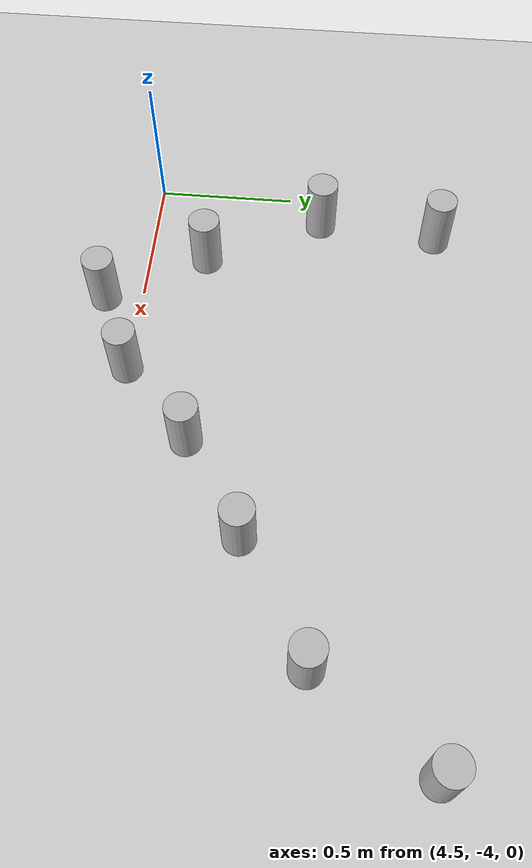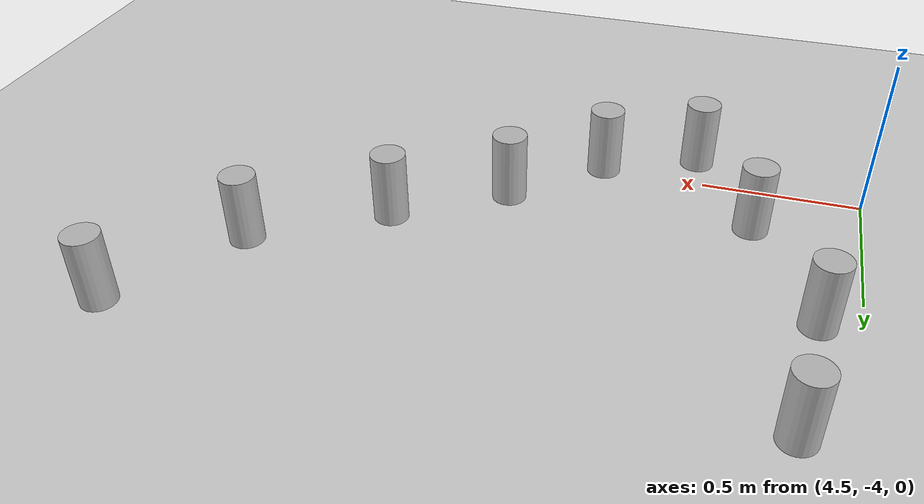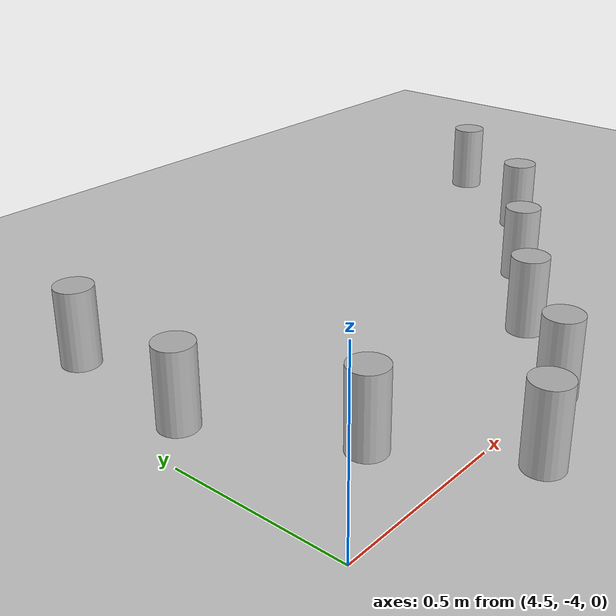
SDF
<sdf version="1.7">
 <world name="default">
  <model name="ground_plane">
   <static>1</static>
   <link name="link">
    <collision name="collision">
     <geometry><plane><normal>0 0 1</normal><size>100 100</size></plane></geometry>
     <surface>
      <contact><collide_bitmask>65535</collide_bitmask></contact>
      <friction><ode><mu>100</mu><mu2>50</mu2></ode></friction>
     </surface>
    </collision>
    <visual name="visual">
     <cast_shadows>0</cast_shadows>
     <geometry><plane><normal>0 0 1</normal><size>100 100</size></plane></geometry>
     <material>
      <script><uri>file://media/materials/scripts/gazebo.material</uri><name>Gazebo/Grey</name></script>
     </material>
    </visual>
   </link>
  </model>
  <model name="beer_clone_4">
   <link name="link">
    <pose>0 0 0.115 0 -0 0</pose>
    <inertial>
     <mass>0.39</mass>
     <inertia><ixx>0.00058</ixx><ixy>0</ixy><ixz>0</ixz><iyy>0.00058</iyy><iyz>0</iyz><izz>0.00019</izz></inertia>
    </inertial>
    <collision name="collision">
     <geometry><cylinder><radius>0.055</radius><length>0.23</length></cylinder></geometry>
    </collision>
    <visual name="visual">
     <geometry><cylinder><radius>0.055</radius><length>0.23</length></cylinder></geometry>
     <material>
      <script>
       <uri>model://beer/materials/scripts</uri>
       <uri>model://beer/materials/textures</uri>
       <name>Beer/Diffuse</name>
      </script>
     </material>
    </visual>
   </link>
   <pose>4.6645 -2.9432 0 0 -0 0</pose>
  </model>
  <model name="beer_clone_5">
   <link name="link">
    <pose>0 0 0.115 0 -0 0</pose>
    <inertial>
     <mass>0.39</mass>
     <inertia><ixx>0.00058</ixx><ixy>0</ixy><ixz>0</ixz><iyy>0.00058</iyy><iyz>0</iyz><izz>0.00019</izz></inertia>
    </inertial>
    <collision name="collision">
     <geometry><cylinder><radius>0.055</radius><length>0.23</length></cylinder></geometry>
    </collision>
    <visual name="visual">
     <geometry><cylinder><radius>0.055</radius><length>0.23</length></cylinder></geometry>
     <material>
      <script>
       <uri>model://beer/materials/scripts</uri>
       <uri>model://beer/materials/textures</uri>
       <name>Beer/Diffuse</name>
      </script>
     </material>
    </visual>
   </link>
   <pose>4.6236 -3.37544 0 0 -0 0</pose>
  </model>
  <model name="beer_clone_6">
   <link name="link">
    <pose>0 0 0.115 0 -0 0</pose>
    <inertial>
     <mass>0.39</mass>
     <inertia><ixx>0.00058</ixx><ixy>0</ixy><ixz>0</ixz><iyy>0.00058</iyy><iyz>0</iyz><izz>0.00019</izz></inertia>
    </inertial>
    <collision name="collision">
     <geometry><cylinder><radius>0.055</radius><length>0.23</length></cylinder></geometry>
    </collision>
    <visual name="visual">
     <geometry><cylinder><radius>0.055</radius><length>0.23</length></cylinder></geometry>
     <material>
      <script>
       <uri>model://beer/materials/scripts</uri>
       <uri>model://beer/materials/textures</uri>
       <name>Beer/Diffuse</name>
      </script>
     </material>
    </visual>
   </link>
   <pose>4.83288 -3.78668 0 0 -0 0</pose>
  </model>
  <model name="beer_clone_7">
   <link name="link">
    <pose>0 0 0.115 0 -0 0</pose>
    <inertial>
     <mass>0.39</mass>
     <inertia><ixx>0.00058</ixx><ixy>0</ixy><ixz>0</ixz><iyy>0.00058</iyy><iyz>0</iyz><izz>0.00019</izz></inertia>
    </inertial>
    <collision name="collision">
     <geometry><cylinder><radius>0.055</radius><length>0.23</length></cylinder></geometry>
    </collision>
    <visual name="visual">
     <geometry><cylinder><radius>0.055</radius><length>0.23</length></cylinder></geometry>
     <material>
      <script>
       <uri>model://beer/materials/scripts</uri>
       <uri>model://beer/materials/textures</uri>
       <name>Beer/Diffuse</name>
      </script>
     </material>
    </visual>
   </link>
   <pose>5.03652 -4.13206 0 0 -0 0</pose>
  </model>
  <model name="beer_clone_8">
   <link name="link">
    <pose>0 0 0.115 0 -0 0</pose>
    <inertial>
     <mass>0.39</mass>
     <inertia><ixx>0.00058</ixx><ixy>0</ixy><ixz>0</ixz><iyy>0.00058</iyy><iyz>0</iyz><izz>0.00019</izz></inertia>
    </inertial>
    <collision name="collision">
     <geometry><cylinder><radius>0.055</radius><length>0.23</length></cylinder></geometry>
    </collision>
    <visual name="visual">
     <geometry><cylinder><radius>0.055</radius><length>0.23</length></cylinder></geometry>
     <material>
      <script>
       <uri>model://beer/materials/scripts</uri>
       <uri>model://beer/materials/textures</uri>
       <name>Beer/Diffuse</name>
      </script>
     </material>
    </visual>
   </link>
   <pose>5.33528 -4.00424 0 0 -0 0</pose>
  </model>
  <model name="beer_clone_9">
   <link name="link">
    <pose>0 0 0.115 0 -0 0</pose>
    <inertial>
     <mass>0.39</mass>
     <inertia><ixx>0.00058</ixx><ixy>0</ixy><ixz>0</ixz><iyy>0.00058</iyy><iyz>0</iyz><izz>0.00019</izz></inertia>
    </inertial>
    <collision name="collision">
     <geometry><cylinder><radius>0.055</radius><length>0.23</length></cylinder></geometry>
    </collision>
    <visual name="visual">
     <geometry><cylinder><radius>0.055</radius><length>0.23</length></cylinder></geometry>
     <material>
      <script>
       <uri>model://beer/materials/scripts</uri>
       <uri>model://beer/materials/textures</uri>
       <name>Beer/Diffuse</name>
      </script>
     </material>
    </visual>
   </link>
   <pose>5.60126 -3.76155 0 0 -0 0</pose>
  </model>
  <model name="beer_clone_10">
   <link name="link">
    <pose>0 0 0.115 0 -0 0</pose>
    <inertial>
     <mass>0.39</mass>
     <inertia><ixx>0.00058</ixx><ixy>0</ixy><ixz>0</ixz><iyy>0.00058</iyy><iyz>0</iyz><izz>0.00019</izz></inertia>
    </inertial>
    <collision name="collision">
     <geometry><cylinder><radius>0.055</radius><length>0.23</length></cylinder></geometry>
    </collision>
    <visual name="visual">
     <geometry><cylinder><radius>0.055</radius><length>0.23</length></cylinder></geometry>
     <material>
      <script>
       <uri>model://beer/materials/scripts</uri>
       <uri>model://beer/materials/textures</uri>
       <name>Beer/Diffuse</name>
      </script>
     </material>
    </visual>
   </link>
   <pose>5.92957 -3.54976 0 0 -0 0</pose>
  </model>
  <model name="beer_clone_11">
   <link name="link">
    <pose>0 0 0.115 0 -0 0</pose>
    <inertial>
     <mass>0.39</mass>
     <inertia><ixx>0.00058</ixx><ixy>0</ixy><ixz>0</ixz><iyy>0.00058</iyy><iyz>0</iyz><izz>0.00019</izz></inertia>
    </inertial>
    <collision name="collision">
     <geometry><cylinder><radius>0.055</radius><length>0.23</length></cylinder></geometry>
    </collision>
    <visual name="visual">
     <geometry><cylinder><radius>0.055</radius><length>0.23</length></cylinder></geometry>
     <material>
      <script>
       <uri>model://beer/materials/scripts</uri>
       <uri>model://beer/materials/textures</uri>
       <name>Beer/Diffuse</name>
      </script>
     </material>
    </visual>
   </link>
   <pose>6.31289 -3.31554 0 0 -0 0</pose>
  </model>
  <model name="beer_clone_12">
   <link name="link">
    <pose>0 0 0.115 0 -0 0</pose>
    <inertial>
     <mass>0.39</mass>
     <inertia><ixx>0.00058</ixx><ixy>0</ixy><ixz>0</ixz><iyy>0.00058</iyy><iyz>0</iyz><izz>0.00019</izz></inertia>
    </inertial>
    <collision name="collision">
     <geometry><cylinder><radius>0.055</radius><length>0.23</length></cylinder></geometry>
    </collision>
    <visual name="visual">
     <geometry><cylinder><radius>0.055</radius><length>0.23</length></cylinder></geometry>
     <material>
      <script>
       <uri>model://beer/materials/scripts</uri>
       <uri>model://beer/materials/textures</uri>
       <name>Beer/Diffuse</name>
      </script>
     </material>
    </visual>
   </link>
   <pose>6.57749 -2.93491 0 0 -0 0</pose>
  </model>
 </world>
</sdf>
